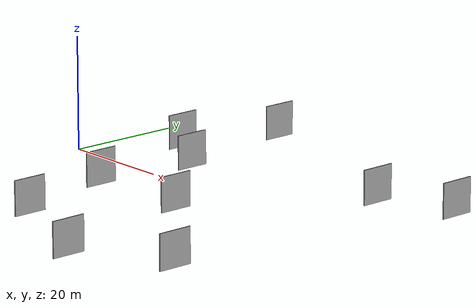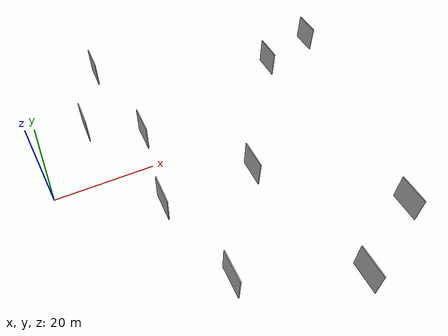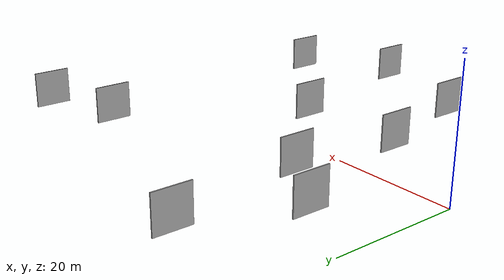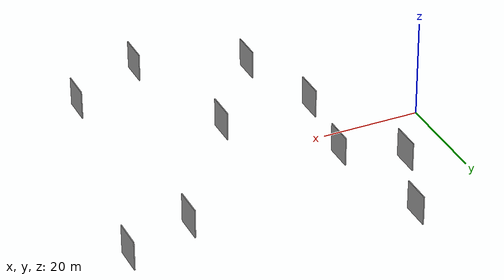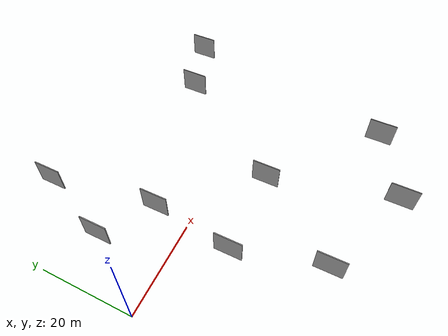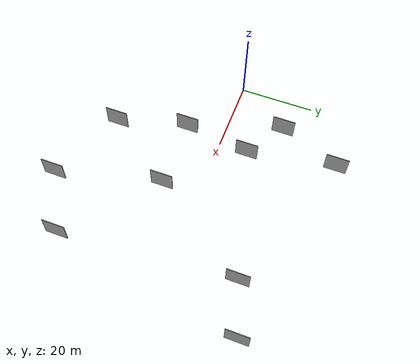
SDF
<sdf version="1.6">
 <world name="default">
  <scene>
   <sky><clouds><speed>12</speed></clouds></sky>
   <ambient>0.4 0.4 0.4 1</ambient>
   <background>0.7 0.7 0.7 1</background>
   <shadows>1</shadows>
  </scene>
  <gravity>0 0 -9.8066</gravity>
  <magnetic_field>6e-06 2.3e-05 -4.2e-05</magnetic_field>
  <physics default="0" name="default_physics" type="ode">
   <ode>
    <solver>
     <type>quick</type>
     <iters>10</iters>
     <sor>1.0</sor>
     <use_dynamic_moi_rescaling>0</use_dynamic_moi_rescaling>
    </solver>
    <constraints>
     <cfm>0</cfm>
     <erp>0.2</erp>
     <contact_max_correcting_vel>100</contact_max_correcting_vel>
     <contact_surface_layer>0.001</contact_surface_layer>
    </constraints>
   </ode>
   <max_step_size>0.004</max_step_size>
   <real_time_factor>1</real_time_factor>
   <real_time_update_rate>250</real_time_update_rate>
  </physics>
  <light name="sun" type="directional">
   <pose>0 0 10 0 0 0</pose>
   <diffuse>0.8 0.8 0.8 1</diffuse>
   <specular>0.2 0.2 0.2 1</specular>
   <attenuation>
    <range>1000</range>
    <constant>0.9</constant>
    <linear>0.01</linear>
    <quadratic>0.001</quadratic>
   </attenuation>
   <direction>-0.5 0.1 -0.9</direction>
  </light>
  <model name="grey_wall_1">
   <static>1</static>
   <pose>55.9318 17.3752 0.0 0.000000 0.000000 1.570796</pose>
   <link name="link">
    <pose>0 0 3.00 0 0 0</pose>
    <collision name="collision"><geometry><box><size>6.00 0.2 6.00</size></box></geometry></collision>
    <visual name="visual">
     <cast_shadows>0</cast_shadows>
     <geometry><box><size>6.00 0.2 6.00</size></box></geometry>
     <material>
      <script>
       <uri>model://grey_wall/materials/scripts</uri>
       <uri>model://grey_wall/materials/textures</uri>
       <name>vrc/grey_wall</name>
      </script>
     </material>
    </visual>
   </link>
  </model>
  <model name="grey_wall_2">
   <static>1</static>
   <pose>23.4749 -28.5139 0.0 0.000000 0.000000 1.570796</pose>
   <link name="link">
    <pose>0 0 3.00 0 0 0</pose>
    <collision name="collision"><geometry><box><size>6.00 0.2 6.00</size></box></geometry></collision>
    <visual name="visual">
     <cast_shadows>0</cast_shadows>
     <geometry><box><size>6.00 0.2 6.00</size></box></geometry>
     <material>
      <script>
       <uri>model://grey_wall/materials/scripts</uri>
       <uri>model://grey_wall/materials/textures</uri>
       <name>vrc/grey_wall</name>
      </script>
     </material>
    </visual>
   </link>
  </model>
  <model name="grey_wall_3">
   <static>1</static>
   <pose>69.5239 21.8463 0.0 0.000000 0.000000 1.570796</pose>
   <link name="link">
    <pose>0 0 3.00 0 0 0</pose>
    <collision name="collision"><geometry><box><size>6.00 0.2 6.00</size></box></geometry></collision>
    <visual name="visual">
     <cast_shadows>0</cast_shadows>
     <geometry><box><size>6.00 0.2 6.00</size></box></geometry>
     <material>
      <script>
       <uri>model://grey_wall/materials/scripts</uri>
       <uri>model://grey_wall/materials/textures</uri>
       <name>vrc/grey_wall</name>
      </script>
     </material>
    </visual>
   </link>
  </model>
  <model name="grey_wall_4">
   <static>1</static>
   <pose>37.3868 -9.7448 0.0 0.000000 0.000000 1.570796</pose>
   <link name="link">
    <pose>0 0 3.00 0 0 0</pose>
    <collision name="collision"><geometry><box><size>6.00 0.2 6.00</size></box></geometry></collision>
    <visual name="visual">
     <cast_shadows>0</cast_shadows>
     <geometry><box><size>6.00 0.2 6.00</size></box></geometry>
     <material>
      <script>
       <uri>model://grey_wall/materials/scripts</uri>
       <uri>model://grey_wall/materials/textures</uri>
       <name>vrc/grey_wall</name>
      </script>
     </material>
    </visual>
   </link>
  </model>
  <model name="grey_wall_5">
   <static>1</static>
   <pose>20.8427 7.7459 0.0 0.000000 0.000000 1.570796</pose>
   <link name="link">
    <pose>0 0 3.00 0 0 0</pose>
    <collision name="collision"><geometry><box><size>6.00 0.2 6.00</size></box></geometry></collision>
    <visual name="visual">
     <cast_shadows>0</cast_shadows>
     <geometry><box><size>6.00 0.2 6.00</size></box></geometry>
     <material>
      <script>
       <uri>model://grey_wall/materials/scripts</uri>
       <uri>model://grey_wall/materials/textures</uri>
       <name>vrc/grey_wall</name>
      </script>
     </material>
    </visual>
   </link>
  </model>
  <model name="grey_wall_6">
   <static>1</static>
   <pose>10.2283 14.6752 0.0 0.000000 0.000000 1.570796</pose>
   <link name="link">
    <pose>0 0 3.00 0 0 0</pose>
    <collision name="collision"><geometry><box><size>6.00 0.2 6.00</size></box></geometry></collision>
    <visual name="visual">
     <cast_shadows>0</cast_shadows>
     <geometry><box><size>6.00 0.2 6.00</size></box></geometry>
     <material>
      <script>
       <uri>model://grey_wall/materials/scripts</uri>
       <uri>model://grey_wall/materials/textures</uri>
       <name>vrc/grey_wall</name>
      </script>
     </material>
    </visual>
   </link>
  </model>
  <model name="grey_wall_7">
   <static>1</static>
   <pose>16.8180 31.0711 0.0 0.000000 0.000000 1.570796</pose>
   <link name="link">
    <pose>0 0 3.00 0 0 0</pose>
    <collision name="collision"><geometry><box><size>6.00 0.2 6.00</size></box></geometry></collision>
    <visual name="visual">
     <cast_shadows>0</cast_shadows>
     <geometry><box><size>6.00 0.2 6.00</size></box></geometry>
     <material>
      <script>
       <uri>model://grey_wall/materials/scripts</uri>
       <uri>model://grey_wall/materials/textures</uri>
       <name>vrc/grey_wall</name>
      </script>
     </material>
    </visual>
   </link>
  </model>
  <model name="grey_wall_8">
   <static>1</static>
   <pose>44.4457 -37.1478 0.0 0.000000 0.000000 1.570796</pose>
   <link name="link">
    <pose>0 0 3.00 0 0 0</pose>
    <collision name="collision"><geometry><box><size>6.00 0.2 6.00</size></box></geometry></collision>
    <visual name="visual">
     <cast_shadows>0</cast_shadows>
     <geometry><box><size>6.00 0.2 6.00</size></box></geometry>
     <material>
      <script>
       <uri>model://grey_wall/materials/scripts</uri>
       <uri>model://grey_wall/materials/textures</uri>
       <name>vrc/grey_wall</name>
      </script>
     </material>
    </visual>
   </link>
  </model>
  <model name="grey_wall_9">
   <static>1</static>
   <pose>59.9115 -28.8072 0.0 0.000000 0.000000 1.570796</pose>
   <link name="link">
    <pose>0 0 3.00 0 0 0</pose>
    <collision name="collision"><geometry><box><size>6.00 0.2 6.00</size></box></geometry></collision>
    <visual name="visual">
     <cast_shadows>0</cast_shadows>
     <geometry><box><size>6.00 0.2 6.00</size></box></geometry>
     <material>
      <script>
       <uri>model://grey_wall/materials/scripts</uri>
       <uri>model://grey_wall/materials/textures</uri>
       <name>vrc/grey_wall</name>
      </script>
     </material>
    </visual>
   </link>
  </model>
  <model name="grey_wall_10">
   <static>1</static>
   <pose>18.4586 -9.9522 0.0 0.000000 0.000000 1.570796</pose>
   <link name="link">
    <pose>0 0 3.00 0 0 0</pose>
    <collision name="collision"><geometry><box><size>6.00 0.2 6.00</size></box></geometry></collision>
    <visual name="visual">
     <cast_shadows>0</cast_shadows>
     <geometry><box><size>6.00 0.2 6.00</size></box></geometry>
     <material>
      <script>
       <uri>model://grey_wall/materials/scripts</uri>
       <uri>model://grey_wall/materials/textures</uri>
       <name>vrc/grey_wall</name>
      </script>
     </material>
    </visual>
   </link>
  </model>
 </world>
</sdf>
